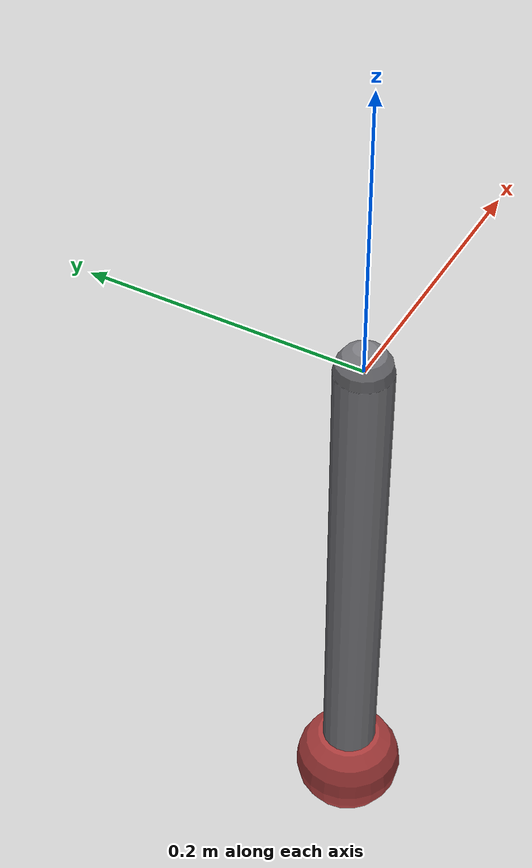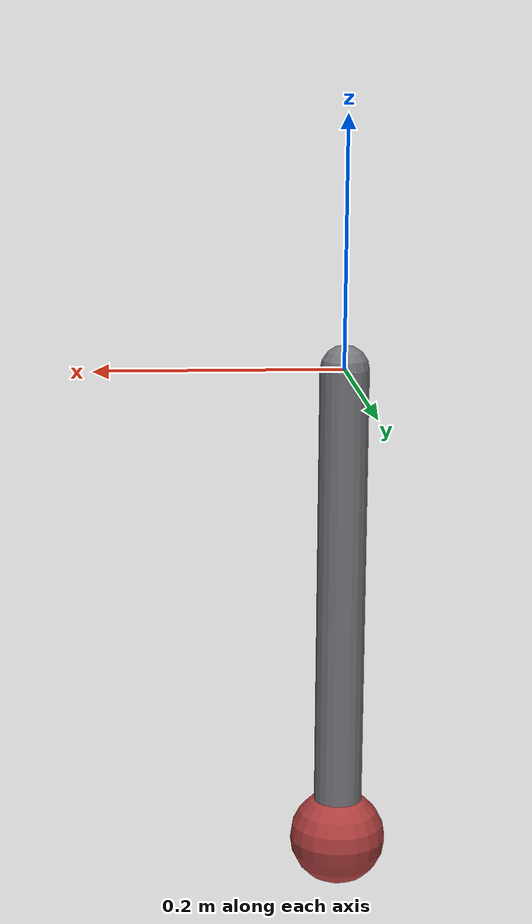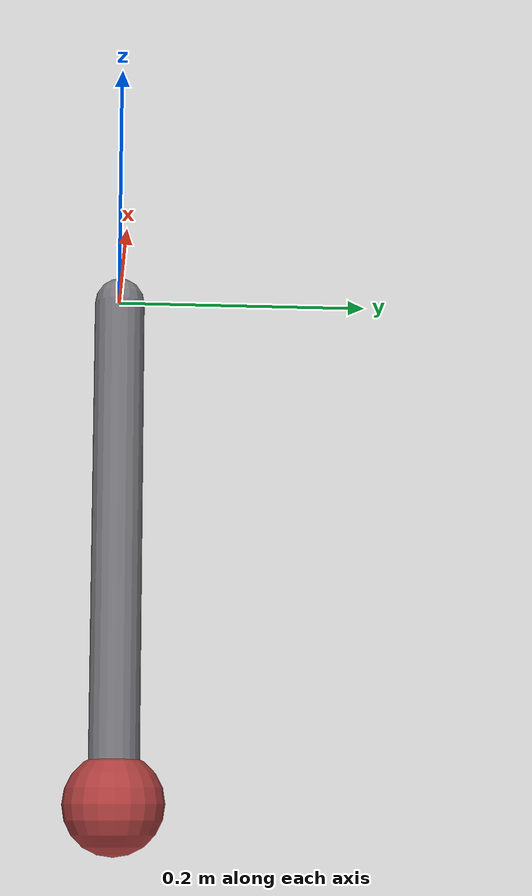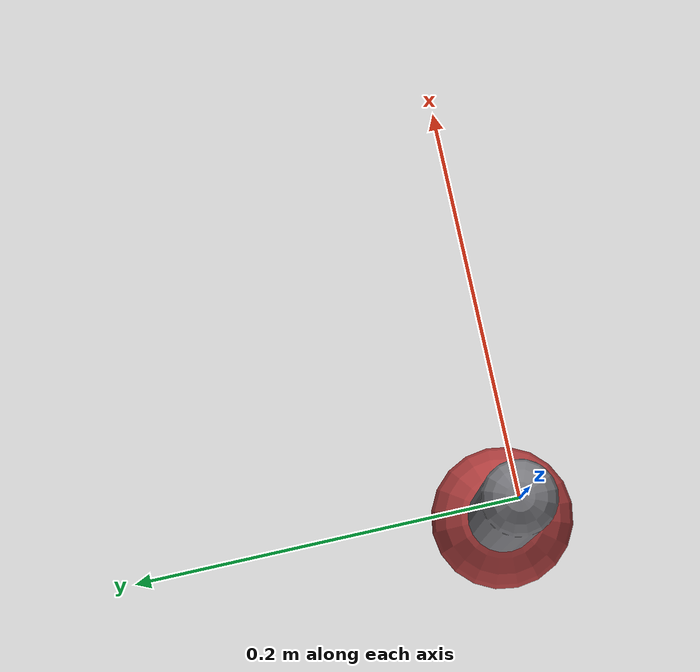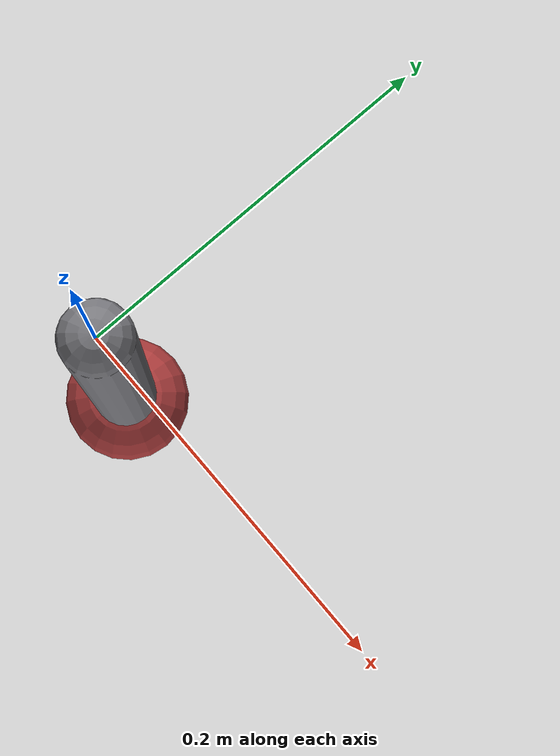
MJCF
<mujoco model="damped-pendulum">
  <compiler angle="radian"/>
  <option gravity="0 0 -9.81" timestep="0.001" integrator="RK4">
    <flag energy="enable"/>
  </option>

  <worldbody>
    <body name="arm" pos="0 0 0">
      <joint name="hinge" type="hinge" axis="0 1 0" damping="0.05"/>
      <inertial pos="0 0 -0.2" mass="1.0" diaginertia="0.02 0.02 0.002"/>
      <geom name="rod" type="capsule" size="0.02"
            fromto="0 0 0  0 0 -0.4" contype="0" conaffinity="0"
            rgba="0.48 0.48 0.50 1"/>
      <geom name="bob" type="sphere" size="0.04"
            pos="0 0 -0.4" contype="0" conaffinity="0"
            rgba="0.7 0.25 0.25 1"/>
    </body>
  </worldbody>

  <sensor>
    <jointpos name="jpos" joint="hinge"/>
    <jointvel name="jvel" joint="hinge"/>
  </sensor>
</mujoco>
